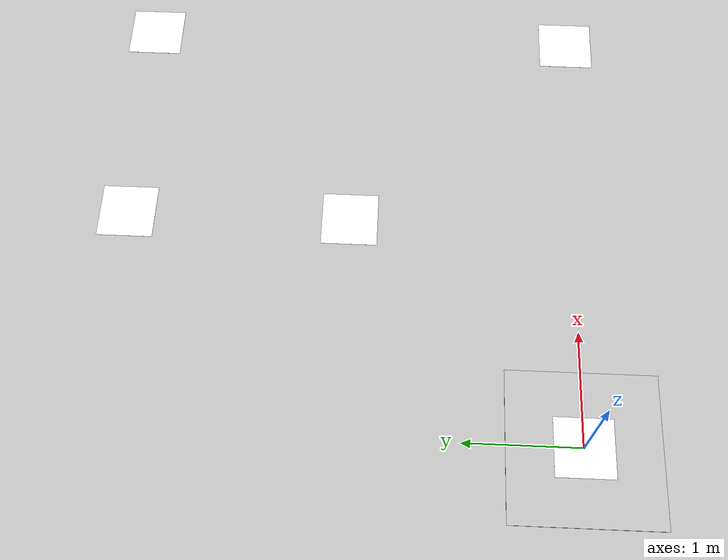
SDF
<?xml version="1.0" ?>
<sdf version="1.10">
  <world name="itajuba_fase2">

    <physics type="ode">
      <max_step_size>0.004</max_step_size>
      <real_time_factor>1.0</real_time_factor>
      <real_time_update_rate>250</real_time_update_rate>
    </physics>

    <plugin name="gz::sim::systems::Physics" filename="gz-sim-physics-system"/>
    <plugin name="gz::sim::systems::UserCommands" filename="gz-sim-user-commands-system"/>
    <plugin name="gz::sim::systems::SceneBroadcaster" filename="gz-sim-scene-broadcaster-system"/>
    <plugin name="gz::sim::systems::Contact" filename="gz-sim-contact-system"/>
    <plugin name="gz::sim::systems::Imu" filename="gz-sim-imu-system"/>
    <plugin name="gz::sim::systems::AirPressure" filename="gz-sim-air-pressure-system"/>
    <plugin name="gz::sim::systems::ApplyLinkWrench" filename="gz-sim-apply-link-wrench-system"/>
    <plugin name="gz::sim::systems::NavSat" filename="gz-sim-navsat-system"/>
    <plugin name="gz::sim::systems::Sensors" filename="gz-sim-sensors-system">
      <render_engine>ogre2</render_engine>
    </plugin>

    <gravity>0 0 -9.8</gravity>
    <magnetic_field>6e-06 2.3e-05 -4.2e-05</magnetic_field>
    <atmosphere type="adiabatic"/>

    <spherical_coordinates>
      <surface_model>EARTH_WGS84</surface_model>
      <world_frame_orientation>ENU</world_frame_orientation>
      <latitude_deg>-23.203008</latitude_deg>
      <longitude_deg>-45.874897</longitude_deg>
      <elevation>0</elevation>
    </spherical_coordinates>

    <scene>
      <ambient>0.4 0.4 0.4 1</ambient>
      <background>0.7 0.7 0.7 1</background>
      <shadows>true</shadows>
      <sky>
        <clouds />
      </sky>
    </scene>

    <light type="directional" name="sun">
      <cast_shadows>true</cast_shadows>
      <pose>0 0 20 0 0 0</pose>
      <ambient>0.8 0.8 0.8 1</ambient>
      <diffuse>1.0 1.0 1.0 1</diffuse>
      <specular>0.2 0.2 0.2 1</specular>
      <attenuation>
        <range>1000</range>
        <constant>0.9</constant>
        <linear>0.01</linear>
        <quadratic>0.001</quadratic>
      </attenuation>
      <direction>-0.5 0.1 -0.9</direction>
    </light>

    <!-- ground plane -->
    <model name="ground_plane">
      <static>true</static>
      <link name="link">
        <collision name="collision">
          <pose>0 0 0 0 0 0</pose>
          <geometry>
            <plane>
              <normal>0 0 1</normal>
              <size>250 250</size>
            </plane>
          </geometry>
          <surface>
            <friction>
              <ode>
                <mu>1</mu>
                <mu2>1</mu2>
              </ode>
            </friction>
          </surface>
        </collision>
        <visual name="grass">
          <pose>0 0 0 0 0 0</pose>
          <cast_shadows>false</cast_shadows>
          <geometry>
            <mesh>
              <uri>file://grass_plane/meshes/grass_plane.dae</uri>
            </mesh>
          </geometry>
        </visual>
      </link>
    </model>

    <!-- THE VOID -->
    <model name="the_void">
      <static>1</static>
      <link name="link">
        <pose frame="">0 0 0.1 0 -0 0</pose>
        <visual name="the_void">
          <pose frame="">0 0 2 0 -0 0</pose>
          <geometry>
            <sphere>
              <radius>0.25</radius>
            </sphere>
          </geometry>
          <material>
            <script>
              <uri>file://media/materials/scripts/Gazebo.material</uri>
              <name>Gazebo/Black</name>
            </script>
          </material>
        </visual>
        <self_collide>0</self_collide>
        <enable_wind>0</enable_wind>
        <kinematic>0</kinematic>
      </link>
      <pose frame="">-1000 -1000 0 0 0 0</pose>
    </model>

    <!-- user camera -->
    <gui>
      <camera name="camera">
        <pose>-4 -4 7 0 0.4 0.89</pose>
      </camera>
    </gui>
    <!-- Plataforma de Takeoff -->
    <include>
      <uri>model://sae/plataforma_estrela</uri>
      <pose>0.0 0.0 0.0 1.57 0 0</pose>
    </include>

    <model name="frente">
      <include>
        <uri>model://aruco0</uri>
        <pose>0.0 0.0 0.02 0.0 0.0 0.0</pose>
      </include>
    </model>

    <model name="esquerda">
      <include>
        <uri>model://aruco2</uri>
        <pose>4.0 0.0 0.02 0.0 0.0 0.0</pose>
      </include>
    </model>

    <model name="tras">
      <include>
        <uri>model://aruco1</uri>
        <pose>4.0 4.0 0.02 0.0 0.0 0.0</pose>
      </include>
    </model>

    <model name="direita">
      <include>
        <uri>model://aruco3</uri>
        <pose>2.0 4.0 0.02 0.0 0.0 0.0</pose>
      </include>
    </model>

    <model name="pousar">
      <include>
        <uri>model://aruco0</uri>
        <pose>2.0 2.0 0.02 0.0 0.0 0.0</pose>
      </include>
    </model>

  </world>
</sdf>

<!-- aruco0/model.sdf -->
<sdf version='1.9'>
  <model name='aruco0'>
    <static>true</static>
    <pose>0 0 0.001 0 0 0</pose>
    <link name='base'>
      <visual name='base_visual'>
        <geometry>
          <plane>
            <normal>0 0 1</normal>
            <size>0.5 0.5</size>
          </plane>
        </geometry>
        <material>
          <diffuse>1 1 1 1</diffuse>
          <specular>0.4 0.4 0.4 1</specular>
          <pbr>
            <metal>
              <albedo_map>model://aruco0/materials/textures/aruco0.png</albedo_map>
            </metal>
          </pbr>
        </material>
      </visual>
    </link>
  </model>
</sdf>

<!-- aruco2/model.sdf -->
<sdf version='1.9'>
  <model name='aruco2'>
    <static>true</static>
    <pose>0 0 0.001 0 0 0</pose>
    <link name='base'>
      <visual name='base_visual'>
        <geometry>
          <plane>
            <normal>0 0 1</normal>
            <size>0.5 0.5</size>
          </plane>
        </geometry>
        <material>
          <diffuse>1 1 1 1</diffuse>
          <specular>0.4 0.4 0.4 1</specular>
          <pbr>
            <metal>
              <albedo_map>model://aruco2/materials/textures/aruco2.png</albedo_map>
            </metal>
          </pbr>
        </material>
      </visual>
    </link>
  </model>
</sdf>

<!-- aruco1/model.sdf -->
<sdf version='1.9'>
  <model name='aruco1'>
    <static>true</static>
    <pose>0 0 0.001 0 0 0</pose>
    <link name='base'>
      <visual name='base_visual'>
        <geometry>
          <plane>
            <normal>0 0 1</normal>
            <size>0.5 0.5</size>
          </plane>
        </geometry>
        <material>
          <diffuse>1 1 1 1</diffuse>
          <specular>0.4 0.4 0.4 1</specular>
          <pbr>
            <metal>
              <albedo_map>model://aruco1/materials/textures/aruco1.png</albedo_map>
            </metal>
          </pbr>
        </material>
      </visual>
    </link>
  </model>
</sdf>

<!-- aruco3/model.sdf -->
<sdf version='1.9'>
  <model name='aruco3'>
    <static>true</static>
    <pose>0 0 0.001 0 0 0</pose>
    <link name='base'>
      <visual name='base_visual'>
        <geometry>
          <plane>
            <normal>0 0 1</normal>
            <size>0.5 0.5</size>
          </plane>
        </geometry>
        <material>
          <diffuse>1 1 1 1</diffuse>
          <specular>0.4 0.4 0.4 1</specular>
          <pbr>
            <metal>
              <albedo_map>model://aruco3/materials/textures/aruco3.png</albedo_map>
            </metal>
          </pbr>
        </material>
      </visual>
    </link>
  </model>
</sdf>

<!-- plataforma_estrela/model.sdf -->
<sdf version="1.10">
  <model name="plataforma_circulo">
    <static>true</static>
    <link name="base_link">
      <visual name="visual">
        <geometry>
          <mesh>
            <uri>model://sae/plataforma_estrela/meshes/plataforma_estrela.obj</uri>
            <scale>0.8 0.8 0.8</scale>
          </mesh>
        </geometry>
      </visual>
      <collision name="collision">
        <geometry>
          <mesh>
            <uri>model://sae/plataforma_estrela/meshes/plataforma_estrela.obj</uri>
            <scale>0.8 0.8 0.8 </scale>
          </mesh>
        </geometry>
      </collision>
    </link>
  </model>
</sdf>
